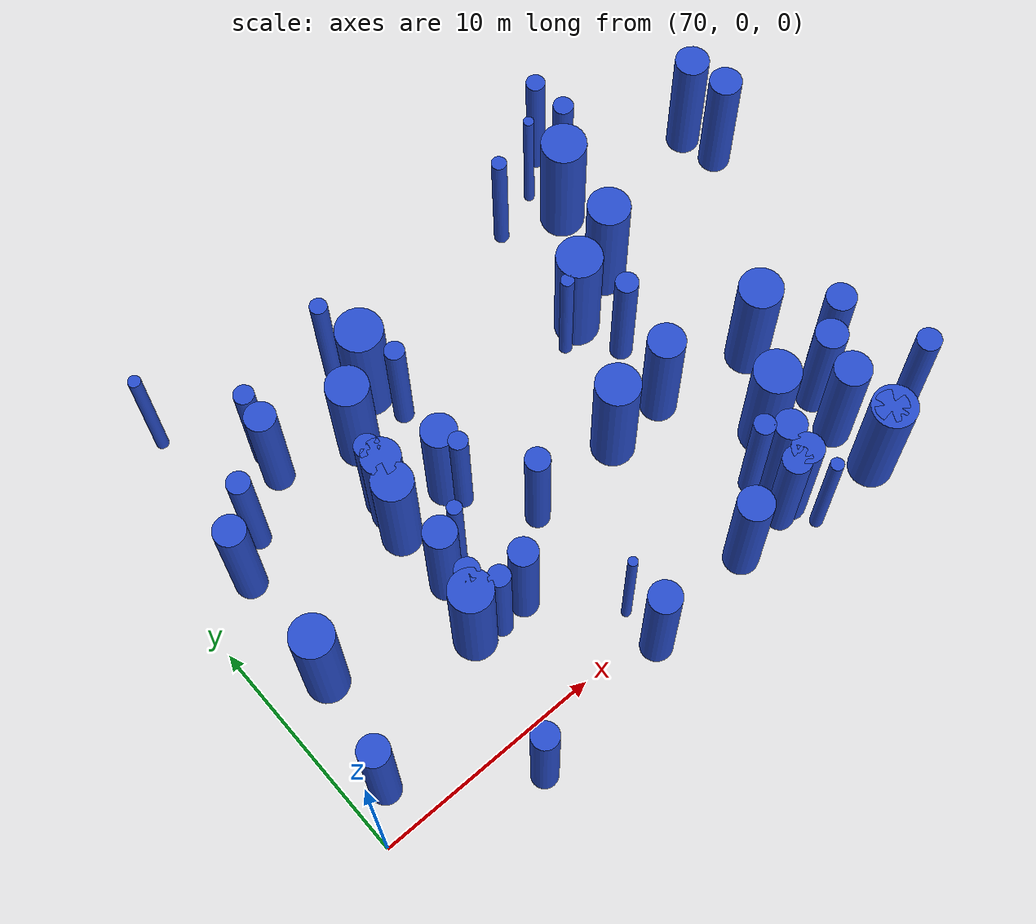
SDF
<sdf version="1.7">
 <world name="default">
  <model name="2">
   <static>1</static>
   <link name="link">
    <inertial>
     <mass>2</mass>
     <inertia><ixx>6.22225</ixx><ixy>0</ixy><ixz>0</ixz><iyy>6.22225</iyy><iyz>0</iyz><izz>0.444496</izz></inertia>
    </inertial>
    <collision name="collision">
     <geometry><cylinder><length>6</length><radius>0.666706</radius></cylinder></geometry>
     <surface><contact><collide_without_contact>1</collide_without_contact></contact></surface>
    </collision>
    <visual name="visual">
     <geometry><cylinder><length>6</length><radius>0.666706</radius></cylinder></geometry>
     <material>
      <script><uri>file://media/materials/scripts/gazebo.material</uri><name>Gazebo/Blue</name></script>
     </material>
    </visual>
    <gravity>0</gravity>
   </link>
   <pose>91.2671 0.181225 3 0 -0 0</pose>
  </model>
  <model name="4">
   <static>1</static>
   <link name="link">
    <inertial>
     <mass>2</mass>
     <inertia><ixx>6.48632</ixx><ixy>0</ixy><ixz>0</ixz><iyy>6.48632</iyy><iyz>0</iyz><izz>0.972646</izz></inertia>
    </inertial>
    <collision name="collision">
     <geometry><cylinder><length>6</length><radius>0.986228</radius></cylinder></geometry>
     <surface><contact><collide_without_contact>1</collide_without_contact></contact></surface>
    </collision>
    <visual name="visual">
     <geometry><cylinder><length>6</length><radius>0.986228</radius></cylinder></geometry>
     <material>
      <script><uri>file://media/materials/scripts/gazebo.material</uri><name>Gazebo/Blue</name></script>
     </material>
    </visual>
    <gravity>0</gravity>
   </link>
   <pose>81.4098 15.2934 3 0 -0 0</pose>
  </model>
  <model name="5">
   <static>1</static>
   <link name="link">
    <inertial>
     <mass>2</mass>
     <inertia><ixx>6.30722</ixx><ixy>0</ixy><ixz>0</ixz><iyy>6.30722</iyy><iyz>0</iyz><izz>0.614445</izz></inertia>
    </inertial>
    <collision name="collision">
     <geometry><cylinder><length>6</length><radius>0.783865</radius></cylinder></geometry>
     <surface><contact><collide_without_contact>1</collide_without_contact></contact></surface>
    </collision>
    <visual name="visual">
     <geometry><cylinder><length>6</length><radius>0.783865</radius></cylinder></geometry>
     <material>
      <script><uri>file://media/materials/scripts/gazebo.material</uri><name>Gazebo/Blue</name></script>
     </material>
    </visual>
    <gravity>0</gravity>
   </link>
   <pose>90.2586 7.07092 3 0 -0 0</pose>
  </model>
  <model name="9">
   <static>1</static>
   <link name="link">
    <inertial>
     <mass>2</mass>
     <inertia><ixx>6.13471</ixx><ixy>0</ixy><ixz>0</ixz><iyy>6.13471</iyy><iyz>0</iyz><izz>0.269422</izz></inertia>
    </inertial>
    <collision name="collision">
     <geometry><cylinder><length>6</length><radius>0.519059</radius></cylinder></geometry>
     <surface><contact><collide_without_contact>1</collide_without_contact></contact></surface>
    </collision>
    <visual name="visual">
     <geometry><cylinder><length>6</length><radius>0.519059</radius></cylinder></geometry>
     <material>
      <script><uri>file://media/materials/scripts/gazebo.material</uri><name>Gazebo/Blue</name></script>
     </material>
    </visual>
    <gravity>0</gravity>
   </link>
   <pose>83.1473 6.55157 3 0 -0 0</pose>
  </model>
  <model name="14">
   <static>1</static>
   <link name="link">
    <inertial>
     <mass>2</mass>
     <inertia><ixx>6.20545</ixx><ixy>0</ixy><ixz>0</ixz><iyy>6.20545</iyy><iyz>0</iyz><izz>0.410899</izz></inertia>
    </inertial>
    <collision name="collision">
     <geometry><cylinder><length>6</length><radius>0.641014</radius></cylinder></geometry>
     <surface><contact><collide_without_contact>1</collide_without_contact></contact></surface>
    </collision>
    <visual name="visual">
     <geometry><cylinder><length>6</length><radius>0.641014</radius></cylinder></geometry>
     <material>
      <script><uri>file://media/materials/scripts/gazebo.material</uri><name>Gazebo/Blue</name></script>
     </material>
    </visual>
    <gravity>0</gravity>
   </link>
   <pose>71.3913 1.83682 3 0 -0 0</pose>
  </model>
  <model name="15">
   <static>1</static>
   <link name="link">
    <inertial>
     <mass>2</mass>
     <inertia><ixx>6.19986</ixx><ixy>0</ixy><ixz>0</ixz><iyy>6.19986</iyy><iyz>0</iyz><izz>0.399711</izz></inertia>
    </inertial>
    <collision name="collision">
     <geometry><cylinder><length>6</length><radius>0.632227</radius></cylinder></geometry>
     <surface><contact><collide_without_contact>1</collide_without_contact></contact></surface>
    </collision>
    <visual name="visual">
     <geometry><cylinder><length>6</length><radius>0.632227</radius></cylinder></geometry>
     <material>
      <script><uri>file://media/materials/scripts/gazebo.material</uri><name>Gazebo/Blue</name></script>
     </material>
    </visual>
    <gravity>0</gravity>
   </link>
   <pose>96.7974 3.99695 3 0 -0 0</pose>
  </model>
  <model name="19">
   <static>1</static>
   <link name="link">
    <inertial>
     <mass>2</mass>
     <inertia><ixx>6.40628</ixx><ixy>0</ixy><ixz>0</ixz><iyy>6.40628</iyy><iyz>0</iyz><izz>0.812551</izz></inertia>
    </inertial>
    <collision name="collision">
     <geometry><cylinder><length>6</length><radius>0.901416</radius></cylinder></geometry>
     <surface><contact><collide_without_contact>1</collide_without_contact></contact></surface>
    </collision>
    <visual name="visual">
     <geometry><cylinder><length>6</length><radius>0.901416</radius></cylinder></geometry>
     <material>
      <script><uri>file://media/materials/scripts/gazebo.material</uri><name>Gazebo/Blue</name></script>
     </material>
    </visual>
    <gravity>0</gravity>
   </link>
   <pose>92.5748 13.081 3 0 -0 0</pose>
  </model>
  <model name="21">
   <static>1</static>
   <link name="link">
    <inertial>
     <mass>2</mass>
     <inertia><ixx>6.08841</ixx><ixy>0</ixy><ixz>0</ixz><iyy>6.08841</iyy><iyz>0</iyz><izz>0.176826</izz></inertia>
    </inertial>
    <collision name="collision">
     <geometry><cylinder><length>6</length><radius>0.420507</radius></cylinder></geometry>
     <surface><contact><collide_without_contact>1</collide_without_contact></contact></surface>
    </collision>
    <visual name="visual">
     <geometry><cylinder><length>6</length><radius>0.420507</radius></cylinder></geometry>
     <material>
      <script><uri>file://media/materials/scripts/gazebo.material</uri><name>Gazebo/Blue</name></script>
     </material>
    </visual>
    <gravity>0</gravity>
   </link>
   <pose>81.9008 13.6855 3 0 -0 0</pose>
  </model>
  <model name="22">
   <static>1</static>
   <link name="link">
    <inertial>
     <mass>2</mass>
     <inertia><ixx>6.22569</ixx><ixy>0</ixy><ixz>0</ixz><iyy>6.22569</iyy><iyz>0</iyz><izz>0.45137</izz></inertia>
    </inertial>
    <collision name="collision">
     <geometry><cylinder><length>6</length><radius>0.671841</radius></cylinder></geometry>
     <surface><contact><collide_without_contact>1</collide_without_contact></contact></surface>
    </collision>
    <visual name="visual">
     <geometry><cylinder><length>6</length><radius>0.671841</radius></cylinder></geometry>
     <material>
      <script><uri>file://media/materials/scripts/gazebo.material</uri><name>Gazebo/Blue</name></script>
     </material>
    </visual>
    <gravity>0</gravity>
   </link>
   <pose>95.3721 3.08072 3 0 -0 0</pose>
  </model>
  <model name="23">
   <static>1</static>
   <link name="link">
    <inertial>
     <mass>2</mass>
     <inertia><ixx>6.26513</ixx><ixy>0</ixy><ixz>0</ixz><iyy>6.26513</iyy><iyz>0</iyz><izz>0.53027</izz></inertia>
    </inertial>
    <collision name="collision">
     <geometry><cylinder><length>6</length><radius>0.728196</radius></cylinder></geometry>
     <surface><contact><collide_without_contact>1</collide_without_contact></contact></surface>
    </collision>
    <visual name="visual">
     <geometry><cylinder><length>6</length><radius>0.728196</radius></cylinder></geometry>
     <material>
      <script><uri>file://media/materials/scripts/gazebo.material</uri><name>Gazebo/Blue</name></script>
     </material>
    </visual>
    <gravity>0</gravity>
   </link>
   <pose>99.903 16.0704 3 0 -0 0</pose>
  </model>
  <model name="28">
   <static>1</static>
   <link name="link">
    <inertial>
     <mass>2</mass>
     <inertia><ixx>6.2172</ixx><ixy>0</ixy><ixz>0</ixz><iyy>6.2172</iyy><iyz>0</iyz><izz>0.434403</izz></inertia>
    </inertial>
    <collision name="collision">
     <geometry><cylinder><length>6</length><radius>0.659093</radius></cylinder></geometry>
     <surface><contact><collide_without_contact>1</collide_without_contact></contact></surface>
    </collision>
    <visual name="visual">
     <geometry><cylinder><length>6</length><radius>0.659093</radius></cylinder></geometry>
     <material>
      <script><uri>file://media/materials/scripts/gazebo.material</uri><name>Gazebo/Blue</name></script>
     </material>
    </visual>
    <gravity>0</gravity>
   </link>
   <pose>91.4611 1.32284 3 0 -0 0</pose>
  </model>
  <model name="32">
   <static>1</static>
   <link name="link">
    <inertial>
     <mass>2</mass>
     <inertia><ixx>6.06788</ixx><ixy>0</ixy><ixz>0</ixz><iyy>6.06788</iyy><iyz>0</iyz><izz>0.135764</izz></inertia>
    </inertial>
    <collision name="collision">
     <geometry><cylinder><length>6</length><radius>0.368461</radius></cylinder></geometry>
     <surface><contact><collide_without_contact>1</collide_without_contact></contact></surface>
    </collision>
    <visual name="visual">
     <geometry><cylinder><length>6</length><radius>0.368461</radius></cylinder></geometry>
     <material>
      <script><uri>file://media/materials/scripts/gazebo.material</uri><name>Gazebo/Blue</name></script>
     </material>
    </visual>
    <gravity>0</gravity>
   </link>
   <pose>80.853 17.1568 3 0 -0 0</pose>
  </model>
  <model name="36">
   <static>1</static>
   <link name="link">
    <inertial>
     <mass>2</mass>
     <inertia><ixx>6.11851</ixx><ixy>0</ixy><ixz>0</ixz><iyy>6.11851</iyy><iyz>0</iyz><izz>0.237017</izz></inertia>
    </inertial>
    <collision name="collision">
     <geometry><cylinder><length>6</length><radius>0.486844</radius></cylinder></geometry>
     <surface><contact><collide_without_contact>1</collide_without_contact></contact></surface>
    </collision>
    <visual name="visual">
     <geometry><cylinder><length>6</length><radius>0.486844</radius></cylinder></geometry>
     <material>
      <script><uri>file://media/materials/scripts/gazebo.material</uri><name>Gazebo/Blue</name></script>
     </material>
    </visual>
    <gravity>0</gravity>
   </link>
   <pose>73.9343 13.2036 3 0 -0 0</pose>
  </model>
  <model name="51">
   <static>1</static>
   <link name="link">
    <inertial>
     <mass>2</mass>
     <inertia><ixx>6.21068</ixx><ixy>0</ixy><ixz>0</ixz><iyy>6.21068</iyy><iyz>0</iyz><izz>0.421362</izz></inertia>
    </inertial>
    <collision name="collision">
     <geometry><cylinder><length>6</length><radius>0.649124</radius></cylinder></geometry>
     <surface><contact><collide_without_contact>1</collide_without_contact></contact></surface>
    </collision>
    <visual name="visual">
     <geometry><cylinder><length>6</length><radius>0.649124</radius></cylinder></geometry>
     <material>
      <script><uri>file://media/materials/scripts/gazebo.material</uri><name>Gazebo/Blue</name></script>
     </material>
    </visual>
    <gravity>0</gravity>
   </link>
   <pose>76.2168 14.8566 3 0 -0 0</pose>
  </model>
  <model name="54">
   <static>1</static>
   <link name="link">
    <inertial>
     <mass>2</mass>
     <inertia>
      <ixx>6.03558</ixx>
      <ixy>0</ixy>
      <ixz>0</ixz>
      <iyy>6.03558</iyy>
      <iyz>0</iyz>
      <izz>0.0711682</izz>
     </inertia>
    </inertial>
    <collision name="collision">
     <geometry><cylinder><length>6</length><radius>0.266774</radius></cylinder></geometry>
     <surface><contact><collide_without_contact>1</collide_without_contact></contact></surface>
    </collision>
    <visual name="visual">
     <geometry><cylinder><length>6</length><radius>0.266774</radius></cylinder></geometry>
     <material>
      <script><uri>file://media/materials/scripts/gazebo.material</uri><name>Gazebo/Blue</name></script>
     </material>
    </visual>
    <gravity>0</gravity>
   </link>
   <pose>73.4351 19.2131 3 0 -0 0</pose>
  </model>
  <model name="56">
   <static>1</static>
   <link name="link">
    <inertial>
     <mass>2</mass>
     <inertia><ixx>6.02038</ixx><ixy>0</ixy><ixz>0</ixz><iyy>6.02038</iyy><iyz>0</iyz><izz>0.040758</izz></inertia>
    </inertial>
    <collision name="collision">
     <geometry><cylinder><length>6</length><radius>0.201886</radius></cylinder></geometry>
     <surface><contact><collide_without_contact>1</collide_without_contact></contact></surface>
    </collision>
    <visual name="visual">
     <geometry><cylinder><length>6</length><radius>0.201886</radius></cylinder></geometry>
     <material>
      <script><uri>file://media/materials/scripts/gazebo.material</uri><name>Gazebo/Blue</name></script>
     </material>
    </visual>
    <gravity>0</gravity>
   </link>
   <pose>83.1428 1.12239 3 0 -0 0</pose>
  </model>
  <model name="72">
   <static>1</static>
   <link name="link">
    <inertial>
     <mass>2</mass>
     <inertia>
      <ixx>6.03907</ixx>
      <ixy>0</ixy>
      <ixz>0</ixz>
      <iyy>6.03907</iyy>
      <iyz>0</iyz>
      <izz>0.0781316</izz>
     </inertia>
    </inertial>
    <collision name="collision">
     <geometry><cylinder><length>6</length><radius>0.27952</radius></cylinder></geometry>
     <surface><contact><collide_without_contact>1</collide_without_contact></contact></surface>
    </collision>
    <visual name="visual">
     <geometry><cylinder><length>6</length><radius>0.27952</radius></cylinder></geometry>
     <material>
      <script><uri>file://media/materials/scripts/gazebo.material</uri><name>Gazebo/Blue</name></script>
     </material>
    </visual>
    <gravity>0</gravity>
   </link>
   <pose>91.6373 -1.02528 3 0 -0 0</pose>
  </model>
  <model name="86">
   <static>1</static>
   <link name="link">
    <inertial>
     <mass>2</mass>
     <inertia><ixx>6.27673</ixx><ixy>0</ixy><ixz>0</ixz><iyy>6.27673</iyy><iyz>0</iyz><izz>0.553452</izz></inertia>
    </inertial>
    <collision name="collision">
     <geometry><cylinder><length>6</length><radius>0.743944</radius></cylinder></geometry>
     <surface><contact><collide_without_contact>1</collide_without_contact></contact></surface>
    </collision>
    <visual name="visual">
     <geometry><cylinder><length>6</length><radius>0.743944</radius></cylinder></geometry>
     <material>
      <script><uri>file://media/materials/scripts/gazebo.material</uri><name>Gazebo/Blue</name></script>
     </material>
    </visual>
    <gravity>0</gravity>
   </link>
   <pose>88.2037 -0.176928 3 0 -0 0</pose>
  </model>
  <model name="89">
   <static>1</static>
   <link name="link">
    <inertial>
     <mass>2</mass>
     <inertia><ixx>6.4705</ixx><ixy>0</ixy><ixz>0</ixz><iyy>6.4705</iyy><iyz>0</iyz><izz>0.941003</izz></inertia>
    </inertial>
    <collision name="collision">
     <geometry><cylinder><length>6</length><radius>0.970053</radius></cylinder></geometry>
     <surface><contact><collide_without_contact>1</collide_without_contact></contact></surface>
    </collision>
    <visual name="visual">
     <geometry><cylinder><length>6</length><radius>0.970053</radius></cylinder></geometry>
     <material>
      <script><uri>file://media/materials/scripts/gazebo.material</uri><name>Gazebo/Blue</name></script>
     </material>
    </visual>
    <gravity>0</gravity>
   </link>
   <pose>90.1267 12.1076 3 0 -0 0</pose>
  </model>
  <model name="91">
   <static>1</static>
   <link name="link">
    <inertial>
     <mass>2</mass>
     <inertia><ixx>6.22202</ixx><ixy>0</ixy><ixz>0</ixz><iyy>6.22202</iyy><iyz>0</iyz><izz>0.444034</izz></inertia>
    </inertial>
    <collision name="collision">
     <geometry><cylinder><length>6</length><radius>0.666359</radius></cylinder></geometry>
     <surface><contact><collide_without_contact>1</collide_without_contact></contact></surface>
    </collision>
    <visual name="visual">
     <geometry><cylinder><length>6</length><radius>0.666359</radius></cylinder></geometry>
     <material>
      <script><uri>file://media/materials/scripts/gazebo.material</uri><name>Gazebo/Blue</name></script>
     </material>
    </visual>
    <gravity>0</gravity>
   </link>
   <pose>72.5225 11.873 3 0 -0 0</pose>
  </model>
  <model name="95">
   <static>1</static>
   <link name="link">
    <inertial>
     <mass>2</mass>
     <inertia><ixx>6.18241</ixx><ixy>0</ixy><ixz>0</ixz><iyy>6.18241</iyy><iyz>0</iyz><izz>0.364816</izz></inertia>
    </inertial>
    <collision name="collision">
     <geometry><cylinder><length>6</length><radius>0.604</radius></cylinder></geometry>
     <surface><contact><collide_without_contact>1</collide_without_contact></contact></surface>
    </collision>
    <visual name="visual">
     <geometry><cylinder><length>6</length><radius>0.604</radius></cylinder></geometry>
     <material>
      <script><uri>file://media/materials/scripts/gazebo.material</uri><name>Gazebo/Blue</name></script>
     </material>
    </visual>
    <gravity>0</gravity>
   </link>
   <pose>90.6245 0.09421 3 0 -0 0</pose>
  </model>
  <model name="96">
   <static>1</static>
   <link name="link">
    <inertial>
     <mass>2</mass>
     <inertia><ixx>6.27592</ixx><ixy>0</ixy><ixz>0</ixz><iyy>6.27592</iyy><iyz>0</iyz><izz>0.551837</izz></inertia>
    </inertial>
    <collision name="collision">
     <geometry><cylinder><length>6</length><radius>0.742857</radius></cylinder></geometry>
     <surface><contact><collide_without_contact>1</collide_without_contact></contact></surface>
    </collision>
    <visual name="visual">
     <geometry><cylinder><length>6</length><radius>0.742857</radius></cylinder></geometry>
     <material>
      <script><uri>file://media/materials/scripts/gazebo.material</uri><name>Gazebo/Blue</name></script>
     </material>
    </visual>
    <gravity>0</gravity>
   </link>
   <pose>81.0577 9.93077 3 0 -0 0</pose>
  </model>
  <model name="98">
   <static>1</static>
   <link name="link">
    <inertial>
     <mass>2</mass>
     <inertia><ixx>6.23045</ixx><ixy>0</ixy><ixz>0</ixz><iyy>6.23045</iyy><iyz>0</iyz><izz>0.460894</izz></inertia>
    </inertial>
    <collision name="collision">
     <geometry><cylinder><length>6</length><radius>0.678891</radius></cylinder></geometry>
     <surface><contact><collide_without_contact>1</collide_without_contact></contact></surface>
    </collision>
    <visual name="visual">
     <geometry><cylinder><length>6</length><radius>0.678891</radius></cylinder></geometry>
     <material>
      <script><uri>file://media/materials/scripts/gazebo.material</uri><name>Gazebo/Blue</name></script>
     </material>
    </visual>
    <gravity>0</gravity>
   </link>
   <pose>83.1274 -0.687307 3 0 -0 0</pose>
  </model>
  <model name="105">
   <static>1</static>
   <link name="link">
    <inertial>
     <mass>2</mass>
     <inertia><ixx>6.39664</ixx><ixy>0</ixy><ixz>0</ixz><iyy>6.39664</iyy><iyz>0</iyz><izz>0.793275</izz></inertia>
    </inertial>
    <collision name="collision">
     <geometry><cylinder><length>6</length><radius>0.89066</radius></cylinder></geometry>
     <surface><contact><collide_without_contact>1</collide_without_contact></contact></surface>
    </collision>
    <visual name="visual">
     <geometry><cylinder><length>6</length><radius>0.89066</radius></cylinder></geometry>
     <material>
      <script><uri>file://media/materials/scripts/gazebo.material</uri><name>Gazebo/Blue</name></script>
     </material>
    </visual>
    <gravity>0</gravity>
   </link>
   <pose>72.332 6.63262 3 0 -0 0</pose>
  </model>
  <model name="113">
   <static>1</static>
   <link name="link">
    <inertial>
     <mass>2</mass>
     <inertia><ixx>6.43572</ixx><ixy>0</ixy><ixz>0</ixz><iyy>6.43572</iyy><iyz>0</iyz><izz>0.871441</izz></inertia>
    </inertial>
    <collision name="collision">
     <geometry><cylinder><length>6</length><radius>0.93351</radius></cylinder></geometry>
     <surface><contact><collide_without_contact>1</collide_without_contact></contact></surface>
    </collision>
    <visual name="visual">
     <geometry><cylinder><length>6</length><radius>0.93351</radius></cylinder></geometry>
     <material>
      <script><uri>file://media/materials/scripts/gazebo.material</uri><name>Gazebo/Blue</name></script>
     </material>
    </visual>
    <gravity>0</gravity>
   </link>
   <pose>87.5579 6.90231 3 0 -0 0</pose>
  </model>
  <model name="115">
   <static>1</static>
   <link name="link">
    <inertial>
     <mass>2</mass>
     <inertia><ixx>6.15438</ixx><ixy>0</ixy><ixz>0</ixz><iyy>6.15438</iyy><iyz>0</iyz><izz>0.308762</izz></inertia>
    </inertial>
    <collision name="collision">
     <geometry><cylinder><length>6</length><radius>0.555664</radius></cylinder></geometry>
     <surface><contact><collide_without_contact>1</collide_without_contact></contact></surface>
    </collision>
    <visual name="visual">
     <geometry><cylinder><length>6</length><radius>0.555664</radius></cylinder></geometry>
     <material>
      <script><uri>file://media/materials/scripts/gazebo.material</uri><name>Gazebo/Blue</name></script>
     </material>
    </visual>
    <gravity>0</gravity>
   </link>
   <pose>76.3764 -1.7317 3 0 -0 0</pose>
  </model>
  <model name="117">
   <static>1</static>
   <link name="link">
    <inertial>
     <mass>2</mass>
     <inertia><ixx>6.42399</ixx><ixy>0</ixy><ixz>0</ixz><iyy>6.42399</iyy><iyz>0</iyz><izz>0.847978</izz></inertia>
    </inertial>
    <collision name="collision">
     <geometry><cylinder><length>6</length><radius>0.920857</radius></cylinder></geometry>
     <surface><contact><collide_without_contact>1</collide_without_contact></contact></surface>
    </collision>
    <visual name="visual">
     <geometry><cylinder><length>6</length><radius>0.920857</radius></cylinder></geometry>
     <material>
      <script><uri>file://media/materials/scripts/gazebo.material</uri><name>Gazebo/Blue</name></script>
     </material>
    </visual>
    <gravity>0</gravity>
   </link>
   <pose>94.6592 6.35378 3 0 -0 0</pose>
  </model>
  <model name="123">
   <static>1</static>
   <link name="link">
    <inertial>
     <mass>2</mass>
     <inertia>
      <ixx>6.02511</ixx>
      <ixy>0</ixy>
      <ixz>0</ixz>
      <iyy>6.02511</iyy>
      <iyz>0</iyz>
      <izz>0.0502241</izz>
     </inertia>
    </inertial>
    <collision name="collision">
     <geometry><cylinder><length>6</length><radius>0.224107</radius></cylinder></geometry>
     <surface><contact><collide_without_contact>1</collide_without_contact></contact></surface>
    </collision>
    <visual name="visual">
     <geometry><cylinder><length>6</length><radius>0.224107</radius></cylinder></geometry>
     <material>
      <script><uri>file://media/materials/scripts/gazebo.material</uri><name>Gazebo/Blue</name></script>
     </material>
    </visual>
    <gravity>0</gravity>
   </link>
   <pose>92.7403 18.2825 3 0 -0 0</pose>
  </model>
  <model name="131">
   <static>1</static>
   <link name="link">
    <inertial>
     <mass>2</mass>
     <inertia><ixx>6.09422</ixx><ixy>0</ixy><ixz>0</ixz><iyy>6.09422</iyy><iyz>0</iyz><izz>0.188448</izz></inertia>
    </inertial>
    <collision name="collision">
     <geometry><cylinder><length>6</length><radius>0.434106</radius></cylinder></geometry>
     <surface><contact><collide_without_contact>1</collide_without_contact></contact></surface>
    </collision>
    <visual name="visual">
     <geometry><cylinder><length>6</length><radius>0.434106</radius></cylinder></geometry>
     <material>
      <script><uri>file://media/materials/scripts/gazebo.material</uri><name>Gazebo/Blue</name></script>
     </material>
    </visual>
    <gravity>0</gravity>
   </link>
   <pose>94.3332 17.9281 3 0 -0 0</pose>
  </model>
  <model name="133">
   <static>1</static>
   <link name="link">
    <inertial>
     <mass>2</mass>
     <inertia><ixx>6.05285</ixx><ixy>0</ixy><ixz>0</ixz><iyy>6.05285</iyy><iyz>0</iyz><izz>0.105705</izz></inertia>
    </inertial>
    <collision name="collision">
     <geometry><cylinder><length>6</length><radius>0.325122</radius></cylinder></geometry>
     <surface><contact><collide_without_contact>1</collide_without_contact></contact></surface>
    </collision>
    <visual name="visual">
     <geometry><cylinder><length>6</length><radius>0.325122</radius></cylinder></geometry>
     <material>
      <script><uri>file://media/materials/scripts/gazebo.material</uri><name>Gazebo/Blue</name></script>
     </material>
    </visual>
    <gravity>0</gravity>
   </link>
   <pose>90.5089 17.5373 3 0 -0 0</pose>
  </model>
  <model name="152">
   <static>1</static>
   <link name="link">
    <inertial>
     <mass>2</mass>
     <inertia><ixx>6.09104</ixx><ixy>0</ixy><ixz>0</ixz><iyy>6.09104</iyy><iyz>0</iyz><izz>0.182088</izz></inertia>
    </inertial>
    <collision name="collision">
     <geometry><cylinder><length>6</length><radius>0.426717</radius></cylinder></geometry>
     <surface><contact><collide_without_contact>1</collide_without_contact></contact></surface>
    </collision>
    <visual name="visual">
     <geometry><cylinder><length>6</length><radius>0.426717</radius></cylinder></geometry>
     <material>
      <script><uri>file://media/materials/scripts/gazebo.material</uri><name>Gazebo/Blue</name></script>
     </material>
    </visual>
    <gravity>0</gravity>
   </link>
   <pose>76.3045 16.0021 3 0 -0 0</pose>
  </model>
  <model name="157">
   <static>1</static>
   <link name="link">
    <inertial>
     <mass>2</mass>
     <inertia><ixx>6.13662</ixx><ixy>0</ixy><ixz>0</ixz><iyy>6.13662</iyy><iyz>0</iyz><izz>0.273247</izz></inertia>
    </inertial>
    <collision name="collision">
     <geometry><cylinder><length>6</length><radius>0.52273</radius></cylinder></geometry>
     <surface><contact><collide_without_contact>1</collide_without_contact></contact></surface>
    </collision>
    <visual name="visual">
     <geometry><cylinder><length>6</length><radius>0.52273</radius></cylinder></geometry>
     <material>
      <script><uri>file://media/materials/scripts/gazebo.material</uri><name>Gazebo/Blue</name></script>
     </material>
    </visual>
    <gravity>0</gravity>
   </link>
   <pose>78.5638 11.2258 3 0 -0 0</pose>
  </model>
  <model name="166">
   <static>1</static>
   <link name="link">
    <inertial>
     <mass>2</mass>
     <inertia><ixx>6.2427</ixx><ixy>0</ixy><ixz>0</ixz><iyy>6.2427</iyy><iyz>0</iyz><izz>0.485393</izz></inertia>
    </inertial>
    <collision name="collision">
     <geometry><cylinder><length>6</length><radius>0.696701</radius></cylinder></geometry>
     <surface><contact><collide_without_contact>1</collide_without_contact></contact></surface>
    </collision>
    <visual name="visual">
     <geometry><cylinder><length>6</length><radius>0.696701</radius></cylinder></geometry>
     <material>
      <script><uri>file://media/materials/scripts/gazebo.material</uri><name>Gazebo/Blue</name></script>
     </material>
    </visual>
    <gravity>0</gravity>
   </link>
   <pose>100.272 14.4059 3 0 -0 0</pose>
  </model>
  <model name="178">
   <static>1</static>
   <link name="link">
    <inertial>
     <mass>2</mass>
     <inertia><ixx>6.46443</ixx><ixy>0</ixy><ixz>0</ixz><iyy>6.46443</iyy><iyz>0</iyz><izz>0.928861</izz></inertia>
    </inertial>
    <collision name="collision">
     <geometry><cylinder><length>6</length><radius>0.963774</radius></cylinder></geometry>
     <surface><contact><collide_without_contact>1</collide_without_contact></contact></surface>
    </collision>
    <visual name="visual">
     <geometry><cylinder><length>6</length><radius>0.963774</radius></cylinder></geometry>
     <material>
      <script><uri>file://media/materials/scripts/gazebo.material</uri><name>Gazebo/Blue</name></script>
     </material>
    </visual>
    <gravity>0</gravity>
   </link>
   <pose>93.1476 16.5264 3 0 -0 0</pose>
  </model>
  <model name="181">
   <static>1</static>
   <link name="link">
    <inertial>
     <mass>2</mass>
     <inertia>
      <ixx>6.04877</ixx>
      <ixy>0</ixy>
      <ixz>0</ixz>
      <iyy>6.04877</iyy>
      <iyz>0</iyz>
      <izz>0.0975473</izz>
     </inertia>
    </inertial>
    <collision name="collision">
     <geometry><cylinder><length>6</length><radius>0.312326</radius></cylinder></geometry>
     <surface><contact><collide_without_contact>1</collide_without_contact></contact></surface>
    </collision>
    <visual name="visual">
     <geometry><cylinder><length>6</length><radius>0.312326</radius></cylinder></geometry>
     <material>
      <script><uri>file://media/materials/scripts/gazebo.material</uri><name>Gazebo/Blue</name></script>
     </material>
    </visual>
    <gravity>0</gravity>
   </link>
   <pose>79.4889 7.10741 3 0 -0 0</pose>
  </model>
  <model name="183">
   <static>1</static>
   <link name="link">
    <inertial>
     <mass>2</mass>
     <inertia>
      <ixx>6.03973</ixx>
      <ixy>0</ixy>
      <ixz>0</ixz>
      <iyy>6.03973</iyy>
      <iyz>0</iyz>
      <izz>0.0794513</izz>
     </inertia>
    </inertial>
    <collision name="collision">
     <geometry><cylinder><length>6</length><radius>0.281871</radius></cylinder></geometry>
     <surface><contact><collide_without_contact>1</collide_without_contact></contact></surface>
    </collision>
    <visual name="visual">
     <geometry><cylinder><length>6</length><radius>0.281871</radius></cylinder></geometry>
     <material>
      <script><uri>file://media/materials/scripts/gazebo.material</uri><name>Gazebo/Blue</name></script>
     </material>
    </visual>
    <gravity>0</gravity>
   </link>
   <pose>89.0674 11.6254 3 0 -0 0</pose>
  </model>
  <model name="206">
   <static>1</static>
   <link name="link">
    <inertial>
     <mass>2</mass>
     <inertia><ixx>6.13337</ixx><ixy>0</ixy><ixz>0</ixz><iyy>6.13337</iyy><iyz>0</iyz><izz>0.266736</izz></inertia>
    </inertial>
    <collision name="collision">
     <geometry><cylinder><length>6</length><radius>0.516465</radius></cylinder></geometry>
     <surface><contact><collide_without_contact>1</collide_without_contact></contact></surface>
    </collision>
    <visual name="visual">
     <geometry><cylinder><length>6</length><radius>0.516465</radius></cylinder></geometry>
     <material>
      <script><uri>file://media/materials/scripts/gazebo.material</uri><name>Gazebo/Blue</name></script>
     </material>
    </visual>
    <gravity>0</gravity>
   </link>
   <pose>98.0842 0.408161 3 0 -0 0</pose>
  </model>
  <model name="207">
   <static>1</static>
   <link name="link">
    <inertial>
     <mass>2</mass>
     <inertia><ixx>6.3297</ixx><ixy>0</ixy><ixz>0</ixz><iyy>6.3297</iyy><iyz>0</iyz><izz>0.659397</izz></inertia>
    </inertial>
    <collision name="collision">
     <geometry><cylinder><length>6</length><radius>0.812032</radius></cylinder></geometry>
     <surface><contact><collide_without_contact>1</collide_without_contact></contact></surface>
    </collision>
    <visual name="visual">
     <geometry><cylinder><length>6</length><radius>0.812032</radius></cylinder></geometry>
     <material>
      <script><uri>file://media/materials/scripts/gazebo.material</uri><name>Gazebo/Blue</name></script>
     </material>
    </visual>
    <gravity>0</gravity>
   </link>
   <pose>78.6873 10.5458 3 0 -0 0</pose>
  </model>
  <model name="232">
   <static>1</static>
   <link name="link">
    <inertial>
     <mass>2</mass>
     <inertia><ixx>6.08079</ixx><ixy>0</ixy><ixz>0</ixz><iyy>6.08079</iyy><iyz>0</iyz><izz>0.161587</izz></inertia>
    </inertial>
    <collision name="collision">
     <geometry><cylinder><length>6</length><radius>0.401978</radius></cylinder></geometry>
     <surface><contact><collide_without_contact>1</collide_without_contact></contact></surface>
    </collision>
    <visual name="visual">
     <geometry><cylinder><length>6</length><radius>0.401978</radius></cylinder></geometry>
     <material>
      <script><uri>file://media/materials/scripts/gazebo.material</uri><name>Gazebo/Blue</name></script>
     </material>
    </visual>
    <gravity>0</gravity>
   </link>
   <pose>81.3435 9.12166 3 0 -0 0</pose>
  </model>
  <model name="236">
   <static>1</static>
   <link name="link">
    <inertial>
     <mass>2</mass>
     <inertia><ixx>6.10063</ixx><ixy>0</ixy><ixz>0</ixz><iyy>6.10063</iyy><iyz>0</iyz><izz>0.201252</izz></inertia>
    </inertial>
    <collision name="collision">
     <geometry><cylinder><length>6</length><radius>0.448611</radius></cylinder></geometry>
     <surface><contact><collide_without_contact>1</collide_without_contact></contact></surface>
    </collision>
    <visual name="visual">
     <geometry><cylinder><length>6</length><radius>0.448611</radius></cylinder></geometry>
     <material>
      <script><uri>file://media/materials/scripts/gazebo.material</uri><name>Gazebo/Blue</name></script>
     </material>
    </visual>
    <gravity>0</gravity>
   </link>
   <pose>90.6948 1.97267 3 0 -0 0</pose>
  </model>
  <model name="243">
   <static>1</static>
   <link name="link">
    <inertial>
     <mass>2</mass>
     <inertia><ixx>6.47515</ixx><ixy>0</ixy><ixz>0</ixz><iyy>6.47515</iyy><iyz>0</iyz><izz>0.950295</izz></inertia>
    </inertial>
    <collision name="collision">
     <geometry><cylinder><length>6</length><radius>0.974831</radius></cylinder></geometry>
     <surface><contact><collide_without_contact>1</collide_without_contact></contact></surface>
    </collision>
    <visual name="visual">
     <geometry><cylinder><length>6</length><radius>0.974831</radius></cylinder></geometry>
     <material>
      <script><uri>file://media/materials/scripts/gazebo.material</uri><name>Gazebo/Blue</name></script>
     </material>
    </visual>
    <gravity>0</gravity>
   </link>
   <pose>92.6249 3.27788 3 0 -0 0</pose>
  </model>
  <model name="247">
   <static>1</static>
   <link name="link">
    <inertial>
     <mass>2</mass>
     <inertia><ixx>6.10507</ixx><ixy>0</ixy><ixz>0</ixz><iyy>6.10507</iyy><iyz>0</iyz><izz>0.210132</izz></inertia>
    </inertial>
    <collision name="collision">
     <geometry><cylinder><length>6</length><radius>0.458402</radius></cylinder></geometry>
     <surface><contact><collide_without_contact>1</collide_without_contact></contact></surface>
    </collision>
    <visual name="visual">
     <geometry><cylinder><length>6</length><radius>0.458402</radius></cylinder></geometry>
     <material>
      <script><uri>file://media/materials/scripts/gazebo.material</uri><name>Gazebo/Blue</name></script>
     </material>
    </visual>
    <gravity>0</gravity>
   </link>
   <pose>79.0193 3.9358 3 0 -0 0</pose>
  </model>
  <model name="249">
   <static>1</static>
   <link name="link">
    <inertial>
     <mass>2</mass>
     <inertia><ixx>6.4451</ixx><ixy>0</ixy><ixz>0</ixz><iyy>6.4451</iyy><iyz>0</iyz><izz>0.890208</izz></inertia>
    </inertial>
    <collision name="collision">
     <geometry><cylinder><length>6</length><radius>0.943508</radius></cylinder></geometry>
     <surface><contact><collide_without_contact>1</collide_without_contact></contact></surface>
    </collision>
    <visual name="visual">
     <geometry><cylinder><length>6</length><radius>0.943508</radius></cylinder></geometry>
     <material>
      <script><uri>file://media/materials/scripts/gazebo.material</uri><name>Gazebo/Blue</name></script>
     </material>
    </visual>
    <gravity>0</gravity>
   </link>
   <pose>95.0143 -0.746537 3 0 -0 0</pose>
  </model>
  <model name="250">
   <static>1</static>
   <link name="link">
    <inertial>
     <mass>2</mass>
     <inertia><ixx>6.36526</ixx><ixy>0</ixy><ixz>0</ixz><iyy>6.36526</iyy><iyz>0</iyz><izz>0.730529</izz></inertia>
    </inertial>
    <collision name="collision">
     <geometry><cylinder><length>6</length><radius>0.85471</radius></cylinder></geometry>
     <surface><contact><collide_without_contact>1</collide_without_contact></contact></surface>
    </collision>
    <visual name="visual">
     <geometry><cylinder><length>6</length><radius>0.85471</radius></cylinder></geometry>
     <material>
      <script><uri>file://media/materials/scripts/gazebo.material</uri><name>Gazebo/Blue</name></script>
     </material>
    </visual>
    <gravity>0</gravity>
   </link>
   <pose>78.3855 9.46857 3 0 -0 0</pose>
  </model>
  <model name="253">
   <static>1</static>
   <link name="link">
    <inertial>
     <mass>2</mass>
     <inertia><ixx>6.18189</ixx><ixy>0</ixy><ixz>0</ixz><iyy>6.18189</iyy><iyz>0</iyz><izz>0.363776</izz></inertia>
    </inertial>
    <collision name="collision">
     <geometry><cylinder><length>6</length><radius>0.603139</radius></cylinder></geometry>
     <surface><contact><collide_without_contact>1</collide_without_contact></contact></surface>
    </collision>
    <visual name="visual">
     <geometry><cylinder><length>6</length><radius>0.603139</radius></cylinder></geometry>
     <material>
      <script><uri>file://media/materials/scripts/gazebo.material</uri><name>Gazebo/Blue</name></script>
     </material>
    </visual>
    <gravity>0</gravity>
   </link>
   <pose>80.3082 4.07511 3 0 -0 0</pose>
  </model>
  <model name="255">
   <static>1</static>
   <link name="link">
    <inertial>
     <mass>2</mass>
     <inertia><ixx>6.2998</ixx><ixy>0</ixy><ixz>0</ixz><iyy>6.2998</iyy><iyz>0</iyz><izz>0.599594</izz></inertia>
    </inertial>
    <collision name="collision">
     <geometry><cylinder><length>6</length><radius>0.774335</radius></cylinder></geometry>
     <surface><contact><collide_without_contact>1</collide_without_contact></contact></surface>
    </collision>
    <visual name="visual">
     <geometry><cylinder><length>6</length><radius>0.774335</radius></cylinder></geometry>
     <material>
      <script><uri>file://media/materials/scripts/gazebo.material</uri><name>Gazebo/Blue</name></script>
     </material>
    </visual>
    <gravity>0</gravity>
   </link>
   <pose>94.9343 1.45617 3 0 -0 0</pose>
  </model>
  <model name="267">
   <static>1</static>
   <link name="link">
    <inertial>
     <mass>2</mass>
     <inertia><ixx>6.4099</ixx><ixy>0</ixy><ixz>0</ixz><iyy>6.4099</iyy><iyz>0</iyz><izz>0.819803</izz></inertia>
    </inertial>
    <collision name="collision">
     <geometry><cylinder><length>6</length><radius>0.90543</radius></cylinder></geometry>
     <surface><contact><collide_without_contact>1</collide_without_contact></contact></surface>
    </collision>
    <visual name="visual">
     <geometry><cylinder><length>6</length><radius>0.90543</radius></cylinder></geometry>
     <material>
      <script><uri>file://media/materials/scripts/gazebo.material</uri><name>Gazebo/Blue</name></script>
     </material>
    </visual>
    <gravity>0</gravity>
   </link>
   <pose>77.8527 4.18893 3 0 -0 0</pose>
  </model>
  <model name="269">
   <static>1</static>
   <link name="link">
    <inertial>
     <mass>2</mass>
     <inertia><ixx>6.12969</ixx><ixy>0</ixy><ixz>0</ixz><iyy>6.12969</iyy><iyz>0</iyz><izz>0.259387</izz></inertia>
    </inertial>
    <collision name="collision">
     <geometry><cylinder><length>6</length><radius>0.5093</radius></cylinder></geometry>
     <surface><contact><collide_without_contact>1</collide_without_contact></contact></surface>
    </collision>
    <visual name="visual">
     <geometry><cylinder><length>6</length><radius>0.5093</radius></cylinder></geometry>
     <material>
      <script><uri>file://media/materials/scripts/gazebo.material</uri><name>Gazebo/Blue</name></script>
     </material>
    </visual>
    <gravity>0</gravity>
   </link>
   <pose>78.2641 4.89772 3 0 -0 0</pose>
  </model>
  <model name="283">
   <static>1</static>
   <link name="link">
    <inertial>
     <mass>2</mass>
     <inertia><ixx>6.08299</ixx><ixy>0</ixy><ixz>0</ixz><iyy>6.08299</iyy><iyz>0</iyz><izz>0.165972</izz></inertia>
    </inertial>
    <collision name="collision">
     <geometry><cylinder><length>6</length><radius>0.407396</radius></cylinder></geometry>
     <surface><contact><collide_without_contact>1</collide_without_contact></contact></surface>
    </collision>
    <visual name="visual">
     <geometry><cylinder><length>6</length><radius>0.407396</radius></cylinder></geometry>
     <material>
      <script><uri>file://media/materials/scripts/gazebo.material</uri><name>Gazebo/Blue</name></script>
     </material>
    </visual>
    <gravity>0</gravity>
   </link>
   <pose>94.1967 19.5355 3 0 -0 0</pose>
  </model>
  <model name="296">
   <static>1</static>
   <link name="link">
    <inertial>
     <mass>2</mass>
     <inertia><ixx>6.11712</ixx><ixy>0</ixy><ixz>0</ixz><iyy>6.11712</iyy><iyz>0</iyz><izz>0.234241</izz></inertia>
    </inertial>
    <collision name="collision">
     <geometry><cylinder><length>6</length><radius>0.483984</radius></cylinder></geometry>
     <surface><contact><collide_without_contact>1</collide_without_contact></contact></surface>
    </collision>
    <visual name="visual">
     <geometry><cylinder><length>6</length><radius>0.483984</radius></cylinder></geometry>
     <material>
      <script><uri>file://media/materials/scripts/gazebo.material</uri><name>Gazebo/Blue</name></script>
     </material>
    </visual>
    <gravity>0</gravity>
   </link>
   <pose>90.7952 10.0105 3 0 -0 0</pose>
  </model>
  <model name="302">
   <static>1</static>
   <link name="link">
    <inertial>
     <mass>2</mass>
     <inertia><ixx>6.39577</ixx><ixy>0</ixy><ixz>0</ixz><iyy>6.39577</iyy><iyz>0</iyz><izz>0.791543</izz></inertia>
    </inertial>
    <collision name="collision">
     <geometry><cylinder><length>6</length><radius>0.889687</radius></cylinder></geometry>
     <surface><contact><collide_without_contact>1</collide_without_contact></contact></surface>
    </collision>
    <visual name="visual">
     <geometry><cylinder><length>6</length><radius>0.889687</radius></cylinder></geometry>
     <material>
      <script><uri>file://media/materials/scripts/gazebo.material</uri><name>Gazebo/Blue</name></script>
     </material>
    </visual>
    <gravity>0</gravity>
   </link>
   <pose>79.5556 13.7001 3 0 -0 0</pose>
  </model>
  <model name="308">
   <static>1</static>
   <link name="link">
    <inertial>
     <mass>2</mass>
     <inertia><ixx>6.24484</ixx><ixy>0</ixy><ixz>0</ixz><iyy>6.24484</iyy><iyz>0</iyz><izz>0.489682</izz></inertia>
    </inertial>
    <collision name="collision">
     <geometry><cylinder><length>6</length><radius>0.699773</radius></cylinder></geometry>
     <surface><contact><collide_without_contact>1</collide_without_contact></contact></surface>
    </collision>
    <visual name="visual">
     <geometry><cylinder><length>6</length><radius>0.699773</radius></cylinder></geometry>
     <material>
      <script><uri>file://media/materials/scripts/gazebo.material</uri><name>Gazebo/Blue</name></script>
     </material>
    </visual>
    <gravity>0</gravity>
   </link>
   <pose>94.9363 -0.65942 3 0 -0 0</pose>
  </model>
  <model name="315">
   <static>1</static>
   <link name="link">
    <inertial>
     <mass>2</mass>
     <inertia><ixx>6.23748</ixx><ixy>0</ixy><ixz>0</ixz><iyy>6.23748</iyy><iyz>0</iyz><izz>0.474968</izz></inertia>
    </inertial>
    <collision name="collision">
     <geometry><cylinder><length>6</length><radius>0.689179</radius></cylinder></geometry>
     <surface><contact><collide_without_contact>1</collide_without_contact></contact></surface>
    </collision>
    <visual name="visual">
     <geometry><cylinder><length>6</length><radius>0.689179</radius></cylinder></geometry>
     <material>
      <script><uri>file://media/materials/scripts/gazebo.material</uri><name>Gazebo/Blue</name></script>
     </material>
    </visual>
    <gravity>0</gravity>
   </link>
   <pose>78.4489 6.70437 3 0 -0 0</pose>
  </model>
 </world>
</sdf>
